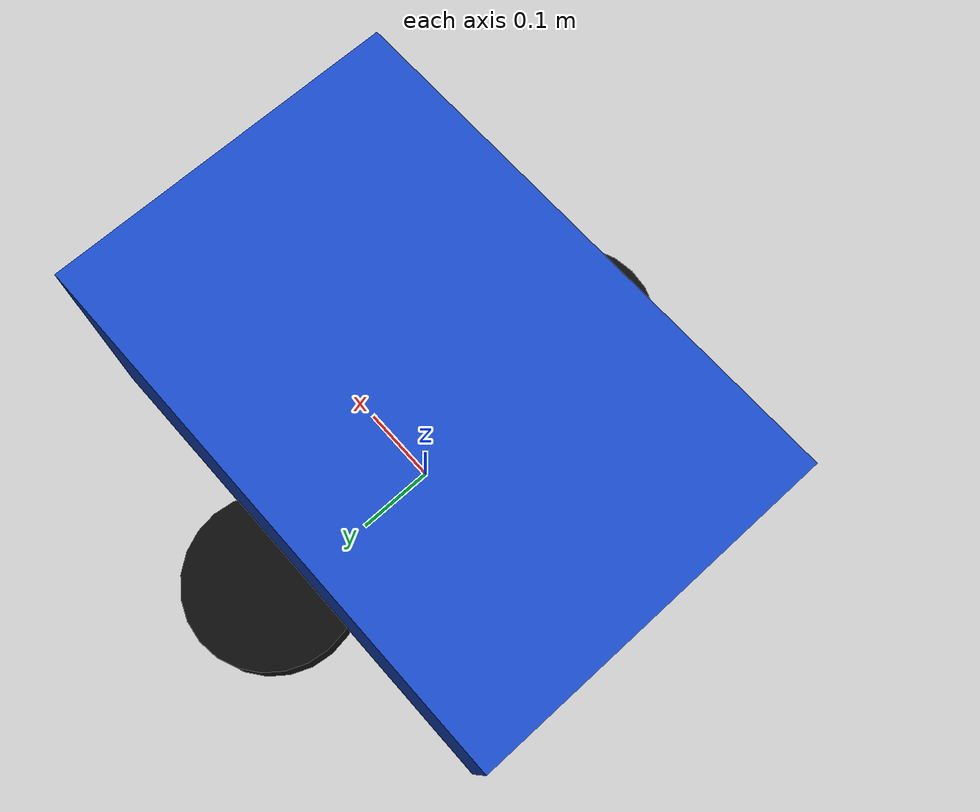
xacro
<?xml version="1.0"?>
<robot xmlns:xacro="http://www.ros.org/wiki/xacro"
       name="industrial_robot">

  <!-- MATERIAL -->

  <material name="blue">
    <color rgba="0.1 0.3 0.8 1.0"/>
  </material>

  <material name="black">
    <color rgba="0.05 0.05 0.05 1.0"/>
  </material>

  <!-- BASE -->

  <link name="base_link">

    <visual>
      <origin xyz="0 0 0.25"/>
      <geometry>
        <box size="0.6 0.4 0.3"/>
      </geometry>
      <material name="blue"/>
    </visual>

    <collision>
      <origin xyz="0 0 0.25"/>
      <geometry>
        <box size="0.6 0.4 0.3"/>
      </geometry>
    </collision>

    <inertial>
      <origin xyz="0 0 0.25"/>
      <mass value="5.0"/>

      <inertia
        ixx="0.10"
        ixy="0.0"
        ixz="0.0"
        iyy="0.20"
        iyz="0.0"
        izz="0.25"/>
    </inertial>

  </link>

  <!-- LEFT WHEEL -->

  <link name="left_wheel">

    <visual>
      <geometry>
        <cylinder radius="0.1" length="0.05"/>
      </geometry>
      <material name="black"/>
    </visual>

    <collision>
      <geometry>
        <cylinder radius="0.1" length="0.05"/>
      </geometry>
    </collision>

    <inertial>
      <mass value="0.5"/>
      <inertia
        ixx="0.001"
        ixy="0.0"
        ixz="0.0"
        iyy="0.001"
        iyz="0.0"
        izz="0.001"/>
    </inertial>

  </link>

  <joint name="left_wheel_joint"
         type="continuous">

    <parent link="base_link"/>
    <child link="left_wheel"/>

    <origin xyz="0 0.23 0.1"/>

    <axis xyz="0 1 0"/>

  </joint>

  <!-- RIGHT WHEEL -->

  <link name="right_wheel">

    <visual>
      <geometry>
        <cylinder radius="0.1" length="0.05"/>
      </geometry>
      <material name="black"/>
    </visual>

    <collision>
      <geometry>
        <cylinder radius="0.1" length="0.05"/>
      </geometry>
    </collision>

    <inertial>
      <mass value="0.5"/>
      <inertia
        ixx="0.001"
        ixy="0.0"
        ixz="0.0"
        iyy="0.001"
        iyz="0.0"
        izz="0.001"/>
    </inertial>

  </link>

  <joint name="right_wheel_joint"
         type="continuous">

    <parent link="base_link"/>
    <child link="right_wheel"/>

    <origin xyz="0 -0.23 0.1"/>

    <axis xyz="0 1 0"/>

  </joint>

  <!-- CASTER -->

  <link name="caster">

    <visual>
      <geometry>
        <sphere radius="0.06"/>
      </geometry>
      <material name="black"/>
    </visual>

    <collision>
      <geometry>
        <sphere radius="0.06"/>
      </geometry>
    </collision>

    <inertial>
      <mass value="0.2"/>

      <inertia
        ixx="0.0001"
        ixy="0.0"
        ixz="0.0"
        iyy="0.0001"
        iyz="0.0"
        izz="0.0001"/>
    </inertial>

  </link>

  <joint name="caster_joint"
         type="fixed">

    <parent link="base_link"/>
    <child link="caster"/>

    <origin xyz="-0.22 0 0.06"/>

  </joint>

  <!-- GAZEBO DIFF DRIVE -->

  <gazebo>

    <plugin
      filename="gz-sim-diff-drive-system"
      name="gz::sim::systems::DiffDrive">

      <left_joint>left_wheel_joint</left_joint>
      <right_joint>right_wheel_joint</right_joint>

      <wheel_separation>0.46</wheel_separation>
      <wheel_radius>0.1</wheel_radius>

      <topic>/cmd_vel</topic>

      <odom_topic>/odom</odom_topic>

      <frame_id>odom</frame_id>
      <child_frame_id>base_link</child_frame_id>

    </plugin>

  </gazebo>

</robot>
